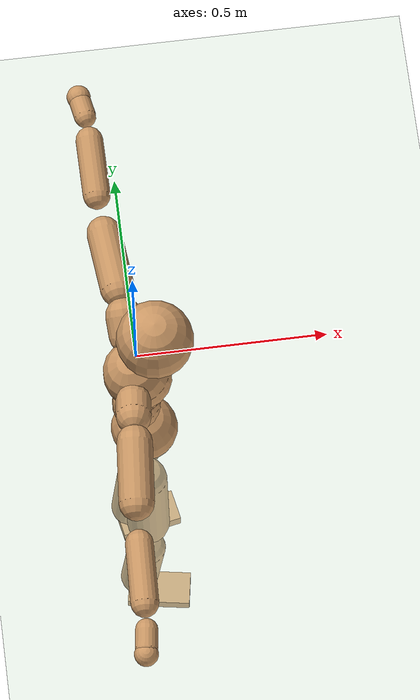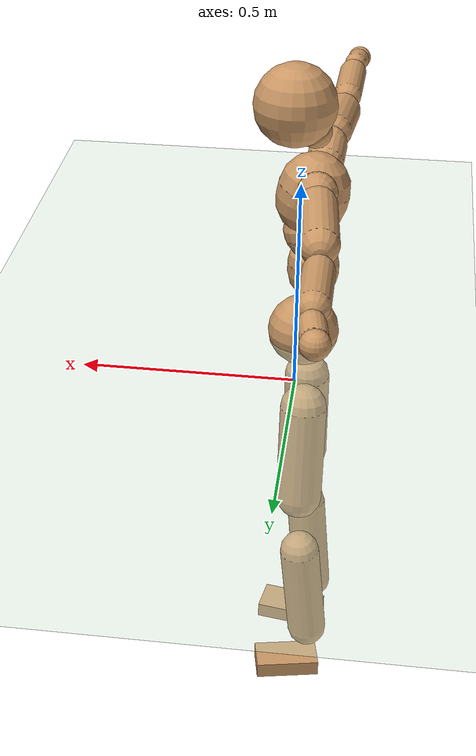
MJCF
<mujoco model="humanoid">
  <compiler coordinate="local" angle="radian"/>
  <default>
    <joint damping="0.0" armature="0.01" stiffness="0.0" limited="true"/>
    <geom conaffinity="1" condim="3" contype="7" margin="0.001" rgba="0.8 0.6 .4 1"/>
  </default>
  <asset>
    <texture type="skybox" builtin="gradient" rgb1=".4 .5 .6" rgb2="0 0 0" width="100" height="100"/>
    <texture builtin="flat" height="1278" mark="cross" markrgb="1 1 1" name="texgeom" random="0.01" rgb1="0.8 0.6 0.4" rgb2="0.8 0.6 0.4" type="cube" width="127"/>
    <texture builtin="checker" height="100" name="texplane" rgb1="0 0 0" rgb2="0.8 0.8 0.8" type="2d" width="100"/>
    <material name="MatPlane" reflectance="0.5" shininess="1" specular="1" texrepeat="60 60" texture="texplane"/>
    <material name="geom" texture="texgeom" texuniform="true"/>
  </asset>
  <worldbody>
    <light cutoff="100" diffuse="1 1 1" dir="-0 0 -1.3" directional="true" exponent="1" pos="0 0 1.3" specular=".1 .1 .1"/>
    <geom conaffinity="1" condim="3" name="floor" pos="0 0 0" rgba="0.8 0.9 0.8 1" size="100 100 .2" type="plane" material="MatPlane"/>
    <body name="Pelvis" pos="-0.0021 -0.2048 0.017">
      <freejoint name="Pelvis"/>
      <geom type="sphere" contype="1" conaffinity="1" density="500" size="0.0865" pos="0.0000 0.0000 0.0000" name="Pelvis"/>
      <body name="L_Hip" pos="-0.0132 0.0672 -0.0916">
        <joint name="L_Hip_x" type="hinge" pos="0 0 0" axis="1 0 0" stiffness="800" damping="80" armature="0.02" range="-180.0000 180.0000"/>
        <joint name="L_Hip_y" type="hinge" pos="0 0 0" axis="0 1 0" stiffness="800" damping="80" armature="0.02" range="-180.0000 180.0000"/>
        <joint name="L_Hip_z" type="hinge" pos="0 0 0" axis="0 0 1" stiffness="800" damping="80" armature="0.02" range="-180.0000 180.0000"/>
        <geom type="capsule" contype="1" conaffinity="1" density="500" fromto="0.0007 0.0088 -0.0846 0.0027 0.0351 -0.3384" size="0.0575" name="L_Hip"/>
        <body name="L_Knee" pos="0.0034 0.0439 -0.423">
          <joint name="L_Knee_x" type="hinge" pos="0 0 0" axis="1 0 0" stiffness="800" damping="80" armature="0.02" range="-180.0000 180.0000"/>
          <joint name="L_Knee_y" type="hinge" pos="0 0 0" axis="0 1 0" stiffness="800" damping="80" armature="0.02" range="-180.0000 180.0000"/>
          <joint name="L_Knee_z" type="hinge" pos="0 0 0" axis="0 0 1" stiffness="800" damping="80" armature="0.02" range="-180.0000 180.0000"/>
          <geom type="capsule" contype="1" conaffinity="1" density="500" fromto="-0.0088 -0.0025 -0.0891 -0.0351 -0.0099 -0.3562" size="0.0505" name="L_Knee"/>
          <body name="L_Ankle" pos="-0.0438 -0.0124 -0.4453">
            <joint name="L_Ankle_x" type="hinge" pos="0 0 0" axis="1 0 0" stiffness="800" damping="80" armature="0.02" range="-180.0000 180.0000"/>
            <joint name="L_Ankle_y" type="hinge" pos="0 0 0" axis="0 1 0" stiffness="800" damping="80" armature="0.02" range="-180.0000 180.0000"/>
            <joint name="L_Ankle_z" type="hinge" pos="0 0 0" axis="0 0 1" stiffness="800" damping="80" armature="0.02" range="-180.0000 180.0000"/>
            <geom type="box" contype="1" conaffinity="1" density="500" pos="0.0601 0.0121 -0.0307" size="0.0828 0.0431 0.0215" quat="0.9951 0.0000 0.0000 0.0992" name="L_Ankle"/>
            <body name="L_Toe" pos="0.1203 0.0242 -0.0613">
              <joint name="L_Toe_x" type="hinge" pos="0 0 0" axis="1 0 0" stiffness="500" damping="50" armature="0.02" range="-180.0000 180.0000"/>
              <joint name="L_Toe_y" type="hinge" pos="0 0 0" axis="0 1 0" stiffness="500" damping="50" armature="0.02" range="-180.0000 180.0000"/>
              <joint name="L_Toe_z" type="hinge" pos="0 0 0" axis="0 0 1" stiffness="500" damping="50" armature="0.02" range="-180.0000 180.0000"/>
              <geom type="box" contype="1" conaffinity="1" density="500" pos="0.0000 0.0000 0.0308" size="0.0009 0.0022 0.0011" quat="0.9944 0.0000 0.0000 0.1055" name="L_Toe"/>
            </body>
          </body>
        </body>
      </body>
      <body name="R_Hip" pos="-0.0087 -0.0649 -0.0902">
        <joint name="R_Hip_x" type="hinge" pos="0 0 0" axis="1 0 0" stiffness="800" damping="80" armature="0.02" range="-180.0000 180.0000"/>
        <joint name="R_Hip_y" type="hinge" pos="0 0 0" axis="0 1 0" stiffness="800" damping="80" armature="0.02" range="-180.0000 180.0000"/>
        <joint name="R_Hip_z" type="hinge" pos="0 0 0" axis="0 0 1" stiffness="800" damping="80" armature="0.02" range="-180.0000 180.0000"/>
        <geom type="capsule" contype="1" conaffinity="1" density="500" fromto="0.0000 -0.0101 -0.0866 0.0001 -0.0403 -0.3462" size="0.0564" name="R_Hip"/>
        <body name="R_Knee" pos="0.0001 -0.0504 -0.4328">
          <joint name="R_Knee_x" type="hinge" pos="0 0 0" axis="1 0 0" stiffness="800" damping="80" armature="0.02" range="-180.0000 180.0000"/>
          <joint name="R_Knee_y" type="hinge" pos="0 0 0" axis="0 1 0" stiffness="800" damping="80" armature="0.02" range="-180.0000 180.0000"/>
          <joint name="R_Knee_z" type="hinge" pos="0 0 0" axis="0 0 1" stiffness="800" damping="80" armature="0.02" range="-180.0000 180.0000"/>
          <geom type="capsule" contype="1" conaffinity="1" density="500" fromto="-0.0081 0.0033 -0.0890 -0.0323 0.0131 -0.3559" size="0.0509" name="R_Knee"/>
          <body name="R_Ankle" pos="-0.0403 0.0164 -0.4449">
            <joint name="R_Ankle_x" type="hinge" pos="0 0 0" axis="1 0 0" stiffness="800" damping="80" armature="0.02" range="-180.0000 180.0000"/>
            <joint name="R_Ankle_y" type="hinge" pos="0 0 0" axis="0 1 0" stiffness="800" damping="80" armature="0.02" range="-180.0000 180.0000"/>
            <joint name="R_Ankle_z" type="hinge" pos="0 0 0" axis="0 0 1" stiffness="800" damping="80" armature="0.02" range="-180.0000 180.0000"/>
            <geom type="box" contype="1" conaffinity="1" density="500" pos="0.0616 -0.0101 -0.0262" size="0.0854 0.045 0.0205" quat="0.9967 0.0000 0.0000 -0.0815" name="R_Ankle"/>
            <body name="R_Toe" pos="0.1232 -0.0203 -0.0525">
              <joint name="R_Toe_x" type="hinge" pos="0 0 0" axis="1 0 0" stiffness="500" damping="50" armature="0.02" range="-180.0000 180.0000"/>
              <joint name="R_Toe_y" type="hinge" pos="0 0 0" axis="0 1 0" stiffness="500" damping="50" armature="0.02" range="-180.0000 180.0000"/>
              <joint name="R_Toe_z" type="hinge" pos="0 0 0" axis="0 0 1" stiffness="500" damping="50" armature="0.02" range="-180.0000 180.0000"/>
              <geom type="box" contype="1" conaffinity="1" density="500" pos="0.0000 0.0000 0.0290" size="0.0008 0.0022 0.0012" quat="0.9974 0.0000 0.0000 -0.0725" name="R_Toe"/>
            </body>
          </body>
        </body>
      </body>
      <body name="Torso" pos="-0.017 -0.0034 0.1051">
        <joint name="Torso_x" type="hinge" pos="0 0 0" axis="1 0 0" stiffness="1000" damping="100" armature="0.02" range="-180.0000 180.0000"/>
        <joint name="Torso_y" type="hinge" pos="0 0 0" axis="0 1 0" stiffness="1000" damping="100" armature="0.02" range="-180.0000 180.0000"/>
        <joint name="Torso_z" type="hinge" pos="0 0 0" axis="0 0 1" stiffness="1000" damping="100" armature="0.02" range="-180.0000 180.0000"/>
        <geom type="capsule" contype="1" conaffinity="1" density="500" fromto="-0.0007 0.0031 0.0838 -0.0005 0.0021 0.0559" size="0.0611" name="Torso"/>
        <body name="Spine" pos="-0.0012 0.0052 0.1397">
          <joint name="Spine_x" type="hinge" pos="0 0 0" axis="1 0 0" stiffness="1000" damping="100" armature="0.02" range="-180.0000 180.0000"/>
          <joint name="Spine_y" type="hinge" pos="0 0 0" axis="0 1 0" stiffness="1000" damping="100" armature="0.02" range="-180.0000 180.0000"/>
          <joint name="Spine_z" type="hinge" pos="0 0 0" axis="0 0 1" stiffness="1000" damping="100" armature="0.02" range="-180.0000 180.0000"/>
          <geom type="capsule" contype="1" conaffinity="1" density="500" fromto="0.0134 0.0008 0.0303 0.0089 0.0005 0.0202" size="0.0614" name="Spine"/>
          <body name="Chest" pos="0.0223 0.0013 0.0505">
            <joint name="Chest_x" type="hinge" pos="0 0 0" axis="1 0 0" stiffness="1000" damping="100" armature="0.02" range="-180.0000 180.0000"/>
            <joint name="Chest_y" type="hinge" pos="0 0 0" axis="0 1 0" stiffness="1000" damping="100" armature="0.02" range="-180.0000 180.0000"/>
            <joint name="Chest_z" type="hinge" pos="0 0 0" axis="0 0 1" stiffness="1000" damping="100" armature="0.02" range="-180.0000 180.0000"/>
            <geom type="capsule" contype="1" conaffinity="1" density="500" fromto="-0.0177 -0.0017 0.0852 -0.0118 -0.0012 0.0568" size="0.0844" name="Chest"/>
            <body name="Neck" pos="-0.0268 -0.0063 0.2067">
              <joint name="Neck_x" type="hinge" pos="0 0 0" axis="1 0 0" stiffness="500" damping="50" armature="0.02" range="-180.0000 180.0000"/>
              <joint name="Neck_y" type="hinge" pos="0 0 0" axis="0 1 0" stiffness="500" damping="50" armature="0.02" range="-180.0000 180.0000"/>
              <joint name="Neck_z" type="hinge" pos="0 0 0" axis="0 0 1" stiffness="500" damping="50" armature="0.02" range="-180.0000 180.0000"/>
              <geom type="capsule" contype="1" conaffinity="1" density="500" fromto="0.0117 0.0012 0.0157 0.0469 0.0049 0.0629" size="0.0386" name="Neck"/>
              <body name="Head" pos="0.0586 0.0061 0.0786">
                <joint name="Head_x" type="hinge" pos="0 0 0" axis="1 0 0" stiffness="500" damping="50" armature="0.02" range="-180.0000 180.0000"/>
                <joint name="Head_y" type="hinge" pos="0 0 0" axis="0 1 0" stiffness="500" damping="50" armature="0.02" range="-180.0000 180.0000"/>
                <joint name="Head_z" type="hinge" pos="0 0 0" axis="0 0 1" stiffness="500" damping="50" armature="0.02" range="-180.0000 180.0000"/>
                <geom type="sphere" contype="1" conaffinity="1" density="500" size="0.0960" pos="0.0000 0.0000 0.0000" name="Head"/>
              </body>
            </body>
            <body name="L_Thorax" pos="-0.0286 0.0704 0.1105">
              <joint name="L_Thorax_x" type="hinge" pos="0 0 0" axis="1 0 0" stiffness="500" damping="50" armature="0.02" range="-180.0000 180.0000"/>
              <joint name="L_Thorax_y" type="hinge" pos="0 0 0" axis="0 1 0" stiffness="500" damping="50" armature="0.02" range="-180.0000 180.0000"/>
              <joint name="L_Thorax_z" type="hinge" pos="0 0 0" axis="0 0 1" stiffness="500" damping="50" armature="0.02" range="-180.0000 180.0000"/>
              <geom type="capsule" contype="1" conaffinity="1" density="500" fromto="-0.0010 0.0157 0.0068 -0.0042 0.0628 0.0274" size="0.0456" name="L_Thorax"/>
              <body name="L_Shoulder" pos="-0.0052 0.0784 0.0342">
                <joint name="L_Shoulder_x" type="hinge" pos="0 0 0" axis="1 0 0" stiffness="500" damping="50" armature="0.02" range="-720.0000 720.0000"/>
                <joint name="L_Shoulder_y" type="hinge" pos="0 0 0" axis="0 1 0" stiffness="500" damping="50" armature="0.02" range="-720.0000 720.0000"/>
                <joint name="L_Shoulder_z" type="hinge" pos="0 0 0" axis="0 0 1" stiffness="500" damping="50" armature="0.02" range="-720.0000 720.0000"/>
                <geom type="capsule" contype="1" conaffinity="1" density="500" fromto="-0.0056 0.0541 -0.0041 -0.0223 0.2165 -0.0163" size="0.0433" name="L_Shoulder"/>
                <body name="L_Elbow" pos="-0.0279 0.2707 -0.0204">
                  <joint name="L_Elbow_x" type="hinge" pos="0 0 0" axis="1 0 0" stiffness="500" damping="50" armature="0.02" range="-720.0000 720.0000"/>
                  <joint name="L_Elbow_y" type="hinge" pos="0 0 0" axis="0 1 0" stiffness="500" damping="50" armature="0.02" range="-720.0000 720.0000"/>
                  <joint name="L_Elbow_z" type="hinge" pos="0 0 0" axis="0 0 1" stiffness="500" damping="50" armature="0.02" range="-720.0000 720.0000"/>
                  <geom type="capsule" contype="1" conaffinity="1" density="500" fromto="-0.0005 0.0508 0.0022 -0.0021 0.2033 0.0089" size="0.0346" name="L_Elbow"/>
                  <body name="L_Wrist" pos="-0.0026 0.2542 0.0112">
                    <joint name="L_Wrist_x" type="hinge" pos="0 0 0" axis="1 0 0" stiffness="300" damping="30" armature="0.02" range="-180.0000 180.0000"/>
                    <joint name="L_Wrist_y" type="hinge" pos="0 0 0" axis="0 1 0" stiffness="300" damping="30" armature="0.02" range="-180.0000 180.0000"/>
                    <joint name="L_Wrist_z" type="hinge" pos="0 0 0" axis="0 0 1" stiffness="300" damping="30" armature="0.02" range="-180.0000 180.0000"/>
                    <geom type="capsule" contype="1" conaffinity="1" density="500" fromto="-0.0026 0.0151 -0.0019 -0.0104 0.0604 -0.0078" size="0.0279" name="L_Wrist"/>
                    <body name="L_Hand" pos="-0.013 0.0756 -0.0097">
                      <joint name="L_Hand_x" type="hinge" pos="0 0 0" axis="1 0 0" stiffness="300" damping="30" armature="0.02" range="-180.0000 180.0000"/>
                      <joint name="L_Hand_y" type="hinge" pos="0 0 0" axis="0 1 0" stiffness="300" damping="30" armature="0.02" range="-180.0000 180.0000"/>
                      <joint name="L_Hand_z" type="hinge" pos="0 0 0" axis="0 0 1" stiffness="300" damping="30" armature="0.02" range="-180.0000 180.0000"/>
                      <geom type="sphere" contype="1" conaffinity="1" density="500" size="0.0304" pos="0.0000 0.0000 0.0000" name="L_Hand"/>
                    </body>
                  </body>
                </body>
              </body>
            </body>
            <body name="R_Thorax" pos="-0.0333 -0.0728 0.1087">
              <joint name="R_Thorax_x" type="hinge" pos="0 0 0" axis="1 0 0" stiffness="500" damping="50" armature="0.02" range="-180.0000 180.0000"/>
              <joint name="R_Thorax_y" type="hinge" pos="0 0 0" axis="0 1 0" stiffness="500" damping="50" armature="0.02" range="-180.0000 180.0000"/>
              <joint name="R_Thorax_z" type="hinge" pos="0 0 0" axis="0 0 1" stiffness="500" damping="50" armature="0.02" range="-180.0000 180.0000"/>
              <geom type="capsule" contype="1" conaffinity="1" density="500" fromto="-0.0014 -0.0161 0.0070 -0.0056 -0.0643 0.0279" size="0.0439" name="R_Thorax"/>
              <body name="R_Shoulder" pos="-0.0069 -0.0804 0.0349">
                <joint name="R_Shoulder_x" type="hinge" pos="0 0 0" axis="1 0 0" stiffness="500" damping="50" armature="0.02" range="-720.0000 720.0000"/>
                <joint name="R_Shoulder_y" type="hinge" pos="0 0 0" axis="0 1 0" stiffness="500" damping="50" armature="0.02" range="-720.0000 720.0000"/>
                <joint name="R_Shoulder_z" type="hinge" pos="0 0 0" axis="0 0 1" stiffness="500" damping="50" armature="0.02" range="-720.0000 720.0000"/>
                <geom type="capsule" contype="1" conaffinity="1" density="500" fromto="-0.0043 -0.0516 -0.0034 -0.0172 -0.2064 -0.0135" size="0.0445" name="R_Shoulder"/>
                <body name="R_Elbow" pos="-0.0215 -0.258 -0.0169">
                  <joint name="R_Elbow_x" type="hinge" pos="0 0 0" axis="1 0 0" stiffness="500" damping="50" armature="0.02" range="-720.0000 720.0000"/>
                  <joint name="R_Elbow_y" type="hinge" pos="0 0 0" axis="0 1 0" stiffness="500" damping="50" armature="0.02" range="-720.0000 720.0000"/>
                  <joint name="R_Elbow_z" type="hinge" pos="0 0 0" axis="0 0 1" stiffness="500" damping="50" armature="0.02" range="-720.0000 720.0000"/>
                  <geom type="capsule" contype="1" conaffinity="1" density="500" fromto="-0.0016 -0.0520 0.0015 -0.0063 -0.2081 0.0061" size="0.0347" name="R_Elbow"/>
                  <body name="R_Wrist" pos="-0.0079 -0.2601 0.0076">
                    <joint name="R_Wrist_x" type="hinge" pos="0 0 0" axis="1 0 0" stiffness="300" damping="30" armature="0.02" range="-180.0000 180.0000"/>
                    <joint name="R_Wrist_y" type="hinge" pos="0 0 0" axis="0 1 0" stiffness="300" damping="30" armature="0.02" range="-180.0000 180.0000"/>
                    <joint name="R_Wrist_z" type="hinge" pos="0 0 0" axis="0 0 1" stiffness="300" damping="30" armature="0.02" range="-180.0000 180.0000"/>
                    <geom type="capsule" contype="1" conaffinity="1" density="500" fromto="-0.0019 -0.0149 -0.0014 -0.0075 -0.0597 -0.0054" size="0.0282" name="R_Wrist"/>
                    <body name="R_Hand" pos="-0.0094 -0.0747 -0.0068">
                      <joint name="R_Hand_x" type="hinge" pos="0 0 0" axis="1 0 0" stiffness="300" damping="30" armature="0.02" range="-180.0000 180.0000"/>
                      <joint name="R_Hand_y" type="hinge" pos="0 0 0" axis="0 1 0" stiffness="300" damping="30" armature="0.02" range="-180.0000 180.0000"/>
                      <joint name="R_Hand_z" type="hinge" pos="0 0 0" axis="0 0 1" stiffness="300" damping="30" armature="0.02" range="-180.0000 180.0000"/>
                      <geom type="sphere" contype="1" conaffinity="1" density="500" size="0.0299" pos="0.0000 0.0000 0.0000" name="R_Hand"/>
                    </body>
                  </body>
                </body>
              </body>
            </body>
          </body>
        </body>
      </body>
    </body>
  </worldbody>
  <actuator>
    <motor name="L_Hip_x" joint="L_Hip_x" gear="500"/>
    <motor name="L_Hip_y" joint="L_Hip_y" gear="500"/>
    <motor name="L_Hip_z" joint="L_Hip_z" gear="500"/>
    <motor name="L_Knee_x" joint="L_Knee_x" gear="500"/>
    <motor name="L_Knee_y" joint="L_Knee_y" gear="500"/>
    <motor name="L_Knee_z" joint="L_Knee_z" gear="500"/>
    <motor name="L_Ankle_x" joint="L_Ankle_x" gear="500"/>
    <motor name="L_Ankle_y" joint="L_Ankle_y" gear="500"/>
    <motor name="L_Ankle_z" joint="L_Ankle_z" gear="500"/>
    <motor name="L_Toe_x" joint="L_Toe_x" gear="500"/>
    <motor name="L_Toe_y" joint="L_Toe_y" gear="500"/>
    <motor name="L_Toe_z" joint="L_Toe_z" gear="500"/>
    <motor name="R_Hip_x" joint="R_Hip_x" gear="500"/>
    <motor name="R_Hip_y" joint="R_Hip_y" gear="500"/>
    <motor name="R_Hip_z" joint="R_Hip_z" gear="500"/>
    <motor name="R_Knee_x" joint="R_Knee_x" gear="500"/>
    <motor name="R_Knee_y" joint="R_Knee_y" gear="500"/>
    <motor name="R_Knee_z" joint="R_Knee_z" gear="500"/>
    <motor name="R_Ankle_x" joint="R_Ankle_x" gear="500"/>
    <motor name="R_Ankle_y" joint="R_Ankle_y" gear="500"/>
    <motor name="R_Ankle_z" joint="R_Ankle_z" gear="500"/>
    <motor name="R_Toe_x" joint="R_Toe_x" gear="500"/>
    <motor name="R_Toe_y" joint="R_Toe_y" gear="500"/>
    <motor name="R_Toe_z" joint="R_Toe_z" gear="500"/>
    <motor name="Torso_x" joint="Torso_x" gear="500"/>
    <motor name="Torso_y" joint="Torso_y" gear="500"/>
    <motor name="Torso_z" joint="Torso_z" gear="500"/>
    <motor name="Spine_x" joint="Spine_x" gear="500"/>
    <motor name="Spine_y" joint="Spine_y" gear="500"/>
    <motor name="Spine_z" joint="Spine_z" gear="500"/>
    <motor name="Chest_x" joint="Chest_x" gear="500"/>
    <motor name="Chest_y" joint="Chest_y" gear="500"/>
    <motor name="Chest_z" joint="Chest_z" gear="500"/>
    <motor name="Neck_x" joint="Neck_x" gear="500"/>
    <motor name="Neck_y" joint="Neck_y" gear="500"/>
    <motor name="Neck_z" joint="Neck_z" gear="500"/>
    <motor name="Head_x" joint="Head_x" gear="500"/>
    <motor name="Head_y" joint="Head_y" gear="500"/>
    <motor name="Head_z" joint="Head_z" gear="500"/>
    <motor name="L_Thorax_x" joint="L_Thorax_x" gear="500"/>
    <motor name="L_Thorax_y" joint="L_Thorax_y" gear="500"/>
    <motor name="L_Thorax_z" joint="L_Thorax_z" gear="500"/>
    <motor name="L_Shoulder_x" joint="L_Shoulder_x" gear="500"/>
    <motor name="L_Shoulder_y" joint="L_Shoulder_y" gear="500"/>
    <motor name="L_Shoulder_z" joint="L_Shoulder_z" gear="500"/>
    <motor name="L_Elbow_x" joint="L_Elbow_x" gear="500"/>
    <motor name="L_Elbow_y" joint="L_Elbow_y" gear="500"/>
    <motor name="L_Elbow_z" joint="L_Elbow_z" gear="500"/>
    <motor name="L_Wrist_x" joint="L_Wrist_x" gear="500"/>
    <motor name="L_Wrist_y" joint="L_Wrist_y" gear="500"/>
    <motor name="L_Wrist_z" joint="L_Wrist_z" gear="500"/>
    <motor name="L_Hand_x" joint="L_Hand_x" gear="500"/>
    <motor name="L_Hand_y" joint="L_Hand_y" gear="500"/>
    <motor name="L_Hand_z" joint="L_Hand_z" gear="500"/>
    <motor name="R_Thorax_x" joint="R_Thorax_x" gear="500"/>
    <motor name="R_Thorax_y" joint="R_Thorax_y" gear="500"/>
    <motor name="R_Thorax_z" joint="R_Thorax_z" gear="500"/>
    <motor name="R_Shoulder_x" joint="R_Shoulder_x" gear="500"/>
    <motor name="R_Shoulder_y" joint="R_Shoulder_y" gear="500"/>
    <motor name="R_Shoulder_z" joint="R_Shoulder_z" gear="500"/>
    <motor name="R_Elbow_x" joint="R_Elbow_x" gear="500"/>
    <motor name="R_Elbow_y" joint="R_Elbow_y" gear="500"/>
    <motor name="R_Elbow_z" joint="R_Elbow_z" gear="500"/>
    <motor name="R_Wrist_x" joint="R_Wrist_x" gear="500"/>
    <motor name="R_Wrist_y" joint="R_Wrist_y" gear="500"/>
    <motor name="R_Wrist_z" joint="R_Wrist_z" gear="500"/>
    <motor name="R_Hand_x" joint="R_Hand_x" gear="500"/>
    <motor name="R_Hand_y" joint="R_Hand_y" gear="500"/>
    <motor name="R_Hand_z" joint="R_Hand_z" gear="500"/>
  </actuator>
  <contact>
    <exclude body1="Torso" body2="Chest"/>
    <exclude body1="Head" body2="Chest"/>
    <exclude body1="R_Knee" body2="R_Toe"/>
    <exclude body1="R_Knee" body2="L_Ankle"/>
    <exclude body1="R_Knee" body2="L_Toe"/>
    <exclude body1="L_Knee" body2="L_Toe"/>
    <exclude body1="L_Knee" body2="R_Ankle"/>
    <exclude body1="L_Knee" body2="R_Toe"/>
    <exclude body1="L_Shoulder" body2="Chest"/>
    <exclude body1="R_Shoulder" body2="Chest"/>
  </contact>
  <sensor/>
  <size njmax="700" nconmax="700"/>
</mujoco>
